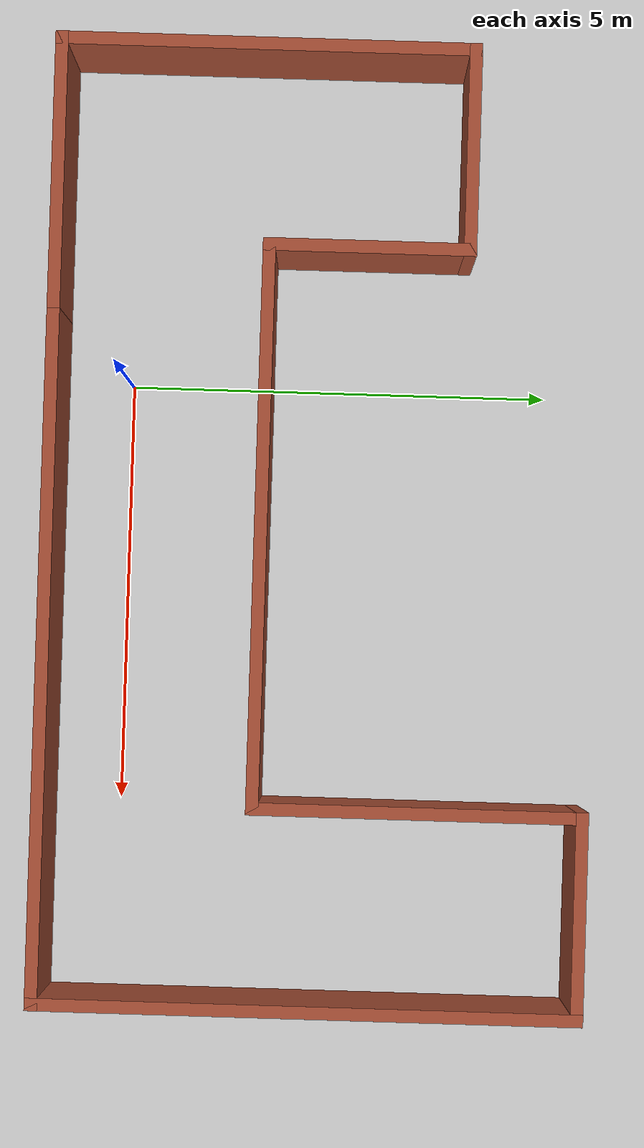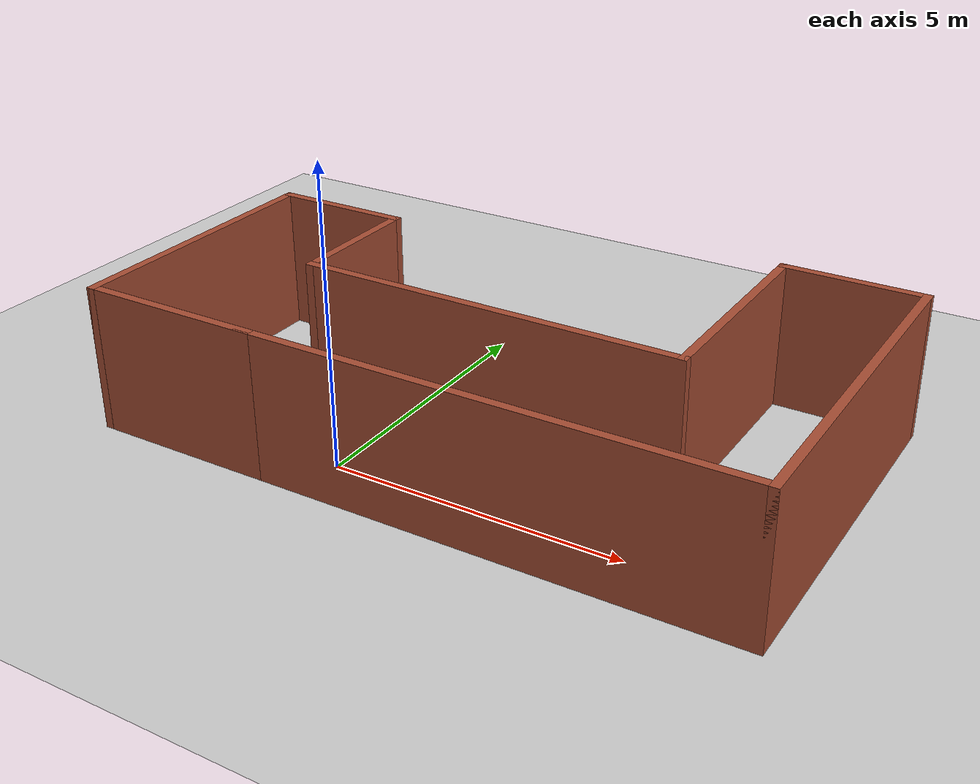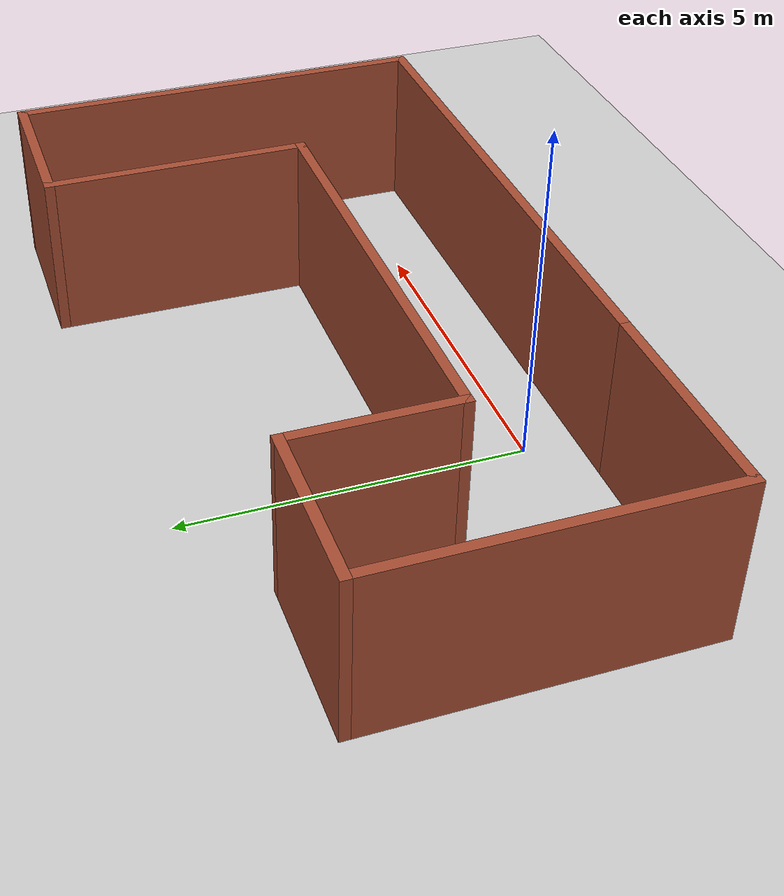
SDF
<sdf version="1.6">
 <world name="default">
  <light name="sun" type="directional">
   <pose>0 0 10 0 -0 0</pose>
   <diffuse>0.8 0.8 0.8 1</diffuse>
   <specular>0.2 0.2 0.2 1</specular>
   <attenuation>
    <range>1000</range>
    <constant>0.9</constant>
    <linear>0.01</linear>
    <quadratic>0.001</quadratic>
   </attenuation>
   <direction>-0.5 0.1 -0.9</direction>
  </light>
  <model name="ground_plane">
   <static>1</static>
   <link name="link">
    <collision name="collision">
     <geometry><plane><normal>0 0 1</normal><size>100 100</size></plane></geometry>
     <surface>
      <contact><collide_bitmask>65535</collide_bitmask></contact>
      <friction><ode><mu>100</mu><mu2>50</mu2></ode></friction>
     </surface>
    </collision>
    <visual name="visual">
     <cast_shadows>0</cast_shadows>
     <geometry><plane><normal>0 0 1</normal><size>100 100</size></plane></geometry>
     <material>
      <script><uri>file://media/materials/scripts/gazebo.material</uri><name>Gazebo/Grey</name></script>
     </material>
    </visual>
   </link>
  </model>
  <gravity>0 0 -9.8</gravity>
  <magnetic_field>6e-06 2.3e-05 -4.2e-05</magnetic_field>
  <atmosphere type="adiabatic"/>
  <physics name="default_physics" default="0" type="ode">
   <max_step_size>0.001</max_step_size>
   <real_time_factor>1</real_time_factor>
   <real_time_update_rate>1000</real_time_update_rate>
  </physics>
  <scene><ambient>0.4 0.4 0.4 1</ambient><background>0.7 0.7 0.7 1</background><shadows>1</shadows></scene>
  <spherical_coordinates>
   <surface_model>EARTH_WGS84</surface_model>
   <latitude_deg>0</latitude_deg>
   <longitude_deg>0</longitude_deg>
   <elevation>0</elevation>
   <heading_deg>0</heading_deg>
  </spherical_coordinates>
  <model name="juhabase">
   <pose>1.71928 2.31427 0 0 -0 0</pose>
   <link name="Wall_0">
    <collision name="Wall_0_Collision">
     <geometry><box><size>8.5 0.15 2.5</size></box></geometry>
     <pose>0 0 1.25 0 -0 0</pose>
    </collision>
    <visual name="Wall_0_Visual">
     <pose>0 0 1.25 0 -0 0</pose>
     <geometry><box><size>8.5 0.15 2.5</size></box></geometry>
     <material>
      <script><uri>file://media/materials/scripts/gazebo.material</uri><name>Gazebo/Bricks</name></script>
      <ambient>1 1 1 1</ambient>
     </material>
     <meta><layer>0</layer></meta>
    </visual>
    <pose>1.475 -3.175 0 0 -0 0</pose>
   </link>
   <link name="Wall_10">
    <collision name="Wall_10_Collision">
     <geometry><box><size>3.25 0.15 2.5</size></box></geometry>
     <pose>0 0 1.25 0 -0 0</pose>
    </collision>
    <visual name="Wall_10_Visual">
     <pose>0 0 1.25 0 -0 0</pose>
     <geometry><box><size>3.25 0.15 2.5</size></box></geometry>
     <material>
      <script><uri>file://media/materials/scripts/gazebo.material</uri><name>Gazebo/Bricks</name></script>
      <ambient>1 1 1 1</ambient>
     </material>
     <meta><layer>0</layer></meta>
    </visual>
    <pose>-4.1 -3.175 0 0 -0 0</pose>
   </link>
   <link name="Wall_3">
    <collision name="Wall_3_Collision">
     <geometry><box><size>6.5 0.15 2.5</size></box></geometry>
     <pose>0 0 1.25 0 -0 0</pose>
    </collision>
    <visual name="Wall_3_Visual">
     <pose>0 0 1.25 0 -0 0</pose>
     <geometry><box><size>6.5 0.15 2.5</size></box></geometry>
     <material>
      <script><uri>file://media/materials/scripts/gazebo.material</uri><name>Gazebo/Bricks</name></script>
      <ambient>1 1 1 1</ambient>
     </material>
     <meta><layer>0</layer></meta>
    </visual>
    <pose>5.65 0 0 0 -0 1.5708</pose>
   </link>
   <link name="Wall_4">
    <collision name="Wall_4_Collision">
     <geometry><box><size>2.5 0.15 2.5</size></box></geometry>
     <pose>0 0 1.25 0 -0 0</pose>
    </collision>
    <visual name="Wall_4_Visual">
     <pose>0 0 1.25 0 -0 0</pose>
     <geometry><box><size>2.5 0.15 2.5</size></box></geometry>
     <material>
      <script><uri>file://media/materials/scripts/gazebo.material</uri><name>Gazebo/Bricks</name></script>
      <ambient>1 1 1 1</ambient>
     </material>
     <meta><layer>0</layer></meta>
    </visual>
    <pose>4.475 3.175 0 0 -0 3.14159</pose>
   </link>
   <link name="Wall_5">
    <collision name="Wall_5_Collision">
     <geometry><box><size>4 0.15 2.5</size></box></geometry>
     <pose>0 0 1.25 0 -0 0</pose>
    </collision>
    <visual name="Wall_5_Visual">
     <pose>0 0 1.25 0 -0 0</pose>
     <geometry><box><size>4 0.15 2.5</size></box></geometry>
     <material>
      <script><uri>file://media/materials/scripts/gazebo.material</uri><name>Gazebo/Bricks</name></script>
      <ambient>1 1 1 1</ambient>
     </material>
     <meta><layer>0</layer></meta>
    </visual>
    <pose>3.3 1.25 0 0 0 -1.5708</pose>
   </link>
   <link name="Wall_6">
    <collision name="Wall_6_Collision">
     <geometry><box><size>6.75 0.15 2.5</size></box></geometry>
     <pose>0 0 1.25 0 -0 0</pose>
    </collision>
    <visual name="Wall_6_Visual">
     <pose>0 0 1.25 0 -0 0</pose>
     <geometry><box><size>6.75 0.15 2.5</size></box></geometry>
     <material>
      <script><uri>file://media/materials/scripts/gazebo.material</uri><name>Gazebo/Bricks</name></script>
      <ambient>1 1 1 1</ambient>
     </material>
     <meta><layer>0</layer></meta>
    </visual>
    <pose>0 -0.675 0 0 -0 3.14159</pose>
   </link>
   <link name="Wall_7">
    <collision name="Wall_7_Collision">
     <geometry><box><size>2.5 0.15 2.5</size></box></geometry>
     <pose>0 0 1.25 0 -0 0</pose>
    </collision>
    <visual name="Wall_7_Visual">
     <pose>0 0 1.25 0 -0 0</pose>
     <geometry><box><size>2.5 0.15 2.5</size></box></geometry>
     <material>
      <script><uri>file://media/materials/scripts/gazebo.material</uri><name>Gazebo/Bricks</name></script>
      <ambient>1 1 1 1</ambient>
     </material>
     <meta><layer>0</layer></meta>
    </visual>
    <pose>-3.3 0.5 0 0 -0 1.5708</pose>
   </link>
   <link name="Wall_8">
    <collision name="Wall_8_Collision">
     <geometry><box><size>2.5 0.15 2.5</size></box></geometry>
     <pose>0 0 1.25 0 -0 0</pose>
    </collision>
    <visual name="Wall_8_Visual">
     <pose>0 0 1.25 0 -0 0</pose>
     <geometry><box><size>2.5 0.15 2.5</size></box></geometry>
     <material>
      <script><uri>file://media/materials/scripts/gazebo.material</uri><name>Gazebo/Bricks</name></script>
      <ambient>1 1 1 1</ambient>
     </material>
     <meta><layer>0</layer></meta>
    </visual>
    <pose>-4.475 1.675 0 0 -0 3.14159</pose>
   </link>
   <link name="Wall_9">
    <collision name="Wall_9_Collision">
     <geometry><box><size>5 0.15 2.5</size></box></geometry>
     <pose>0 0 1.25 0 -0 0</pose>
    </collision>
    <visual name="Wall_9_Visual">
     <pose>0 0 1.25 0 -0 0</pose>
     <geometry><box><size>5 0.15 2.5</size></box></geometry>
     <material>
      <script><uri>file://media/materials/scripts/gazebo.material</uri><name>Gazebo/Bricks</name></script>
      <ambient>1 1 1 1</ambient>
     </material>
     <meta><layer>0</layer></meta>
    </visual>
    <pose>-5.65 -0.75 0 0 0 -1.5708</pose>
   </link>
   <static>1</static>
  </model>
  <plugin filename="libcollision_map_creator.so" name="collision_map_creator"/>
 </world>
</sdf>
